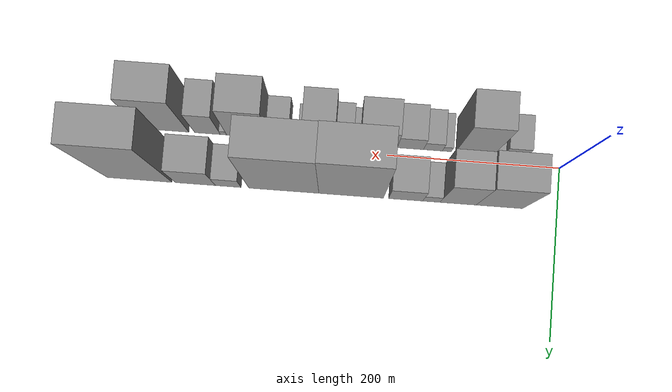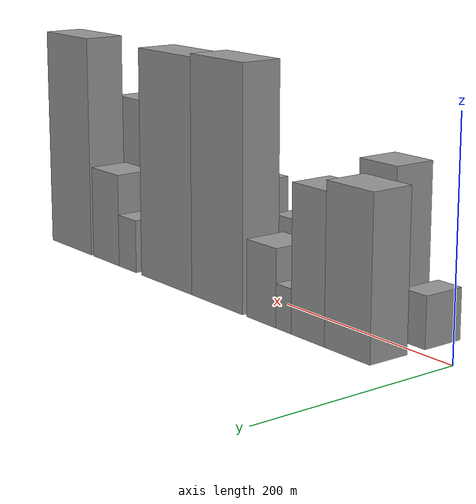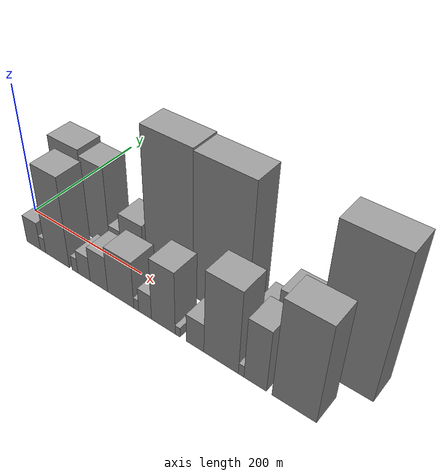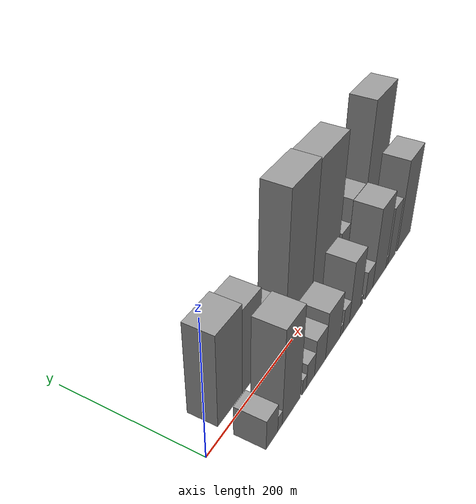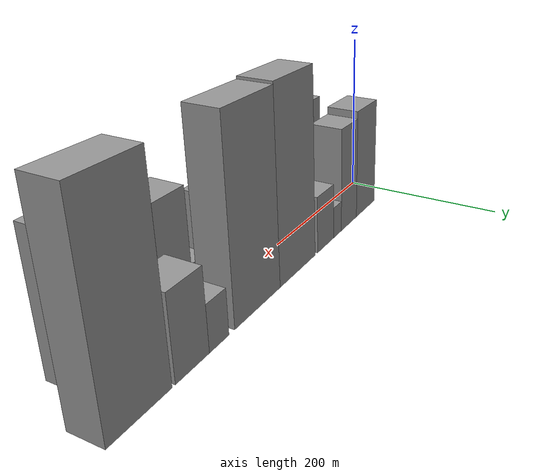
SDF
<sdf version="1.6">
 <world name="default">
  <scene>
   <sky><clouds><speed>12</speed></clouds></sky>
   <ambient>0.4 0.4 0.4 1</ambient>
   <background>0.7 0.7 0.7 1</background>
   <shadows>1</shadows>
  </scene>
  <gravity>0 0 -9.8066</gravity>
  <magnetic_field>6e-06 2.3e-05 -4.2e-05</magnetic_field>
  <physics default="0" name="default_physics" type="ode">
   <ode>
    <solver>
     <type>quick</type>
     <iters>10</iters>
     <sor>1.0</sor>
     <use_dynamic_moi_rescaling>0</use_dynamic_moi_rescaling>
    </solver>
    <constraints>
     <cfm>0</cfm>
     <erp>0.2</erp>
     <contact_max_correcting_vel>100</contact_max_correcting_vel>
     <contact_surface_layer>0.001</contact_surface_layer>
    </constraints>
   </ode>
   <max_step_size>0.004</max_step_size>
   <real_time_factor>1</real_time_factor>
   <real_time_update_rate>250</real_time_update_rate>
  </physics>
  <light name="sun" type="directional">
   <pose>0 0 10 0 0 0</pose>
   <diffuse>0.8 0.8 0.8 1</diffuse>
   <specular>0.2 0.2 0.2 1</specular>
   <attenuation>
    <range>1000</range>
    <constant>0.9</constant>
    <linear>0.01</linear>
    <quadratic>0.001</quadratic>
   </attenuation>
   <direction>-0.5 0.1 -0.9</direction>
  </light>
  <model name="building_1">
   <static>1</static>
   <pose>66.9440 30.0000 0 0.000000 0.000000 1.570796</pose>
   <link name="link">
    <pose>0 0 69.00 0 0 0</pose>
    <collision name="collision"><geometry><box><size>40.0000 53.8881 138.0000</size></box></geometry></collision>
    <visual name="visual">
     <cast_shadows>0</cast_shadows>
     <geometry><box><size>40.0000 53.8881 138.0000</size></box></geometry>
     <material>
      <script>
       <uri>model://grey_wall/materials/scripts</uri>
       <uri>model://grey_wall/materials/textures</uri>
       <name>vrc/grey_wall</name>
      </script>
     </material>
    </visual>
   </link>
  </model>
  <model name="building_2">
   <static>1</static>
   <pose>114.7403 30.0000 0 0.000000 0.000000 1.570796</pose>
   <link name="link">
    <pose>0 0 64.50 0 0 0</pose>
    <collision name="collision"><geometry><box><size>40.0000 41.7045 129.0000</size></box></geometry></collision>
    <visual name="visual">
     <cast_shadows>0</cast_shadows>
     <geometry><box><size>40.0000 41.7045 129.0000</size></box></geometry>
     <material>
      <script>
       <uri>model://grey_wall/materials/scripts</uri>
       <uri>model://grey_wall/materials/textures</uri>
       <name>vrc/grey_wall</name>
      </script>
     </material>
    </visual>
   </link>
  </model>
  <model name="building_3">
   <static>1</static>
   <pose>145.5895 30.0000 0 0.000000 0.000000 1.570796</pose>
   <link name="link">
    <pose>0 0 19.50 0 0 0</pose>
    <collision name="collision"><geometry><box><size>40.0000 19.9938 39.0000</size></box></geometry></collision>
    <visual name="visual">
     <cast_shadows>0</cast_shadows>
     <geometry><box><size>40.0000 19.9938 39.0000</size></box></geometry>
     <material>
      <script>
       <uri>model://grey_wall/materials/scripts</uri>
       <uri>model://grey_wall/materials/textures</uri>
       <name>vrc/grey_wall</name>
      </script>
     </material>
    </visual>
   </link>
  </model>
  <model name="building_4">
   <static>1</static>
   <pose>175.2585 30.0000 0 0.000000 0.000000 1.570796</pose>
   <link name="link">
    <pose>0 0 34.50 0 0 0</pose>
    <collision name="collision"><geometry><box><size>40.0000 39.3444 69.0000</size></box></geometry></collision>
    <visual name="visual">
     <cast_shadows>0</cast_shadows>
     <geometry><box><size>40.0000 39.3444 69.0000</size></box></geometry>
     <material>
      <script>
       <uri>model://grey_wall/materials/scripts</uri>
       <uri>model://grey_wall/materials/textures</uri>
       <name>vrc/grey_wall</name>
      </script>
     </material>
    </visual>
   </link>
  </model>
  <model name="building_5">
   <static>1</static>
   <pose>238.2766 30.0000 0 0.000000 0.000000 1.570796</pose>
   <link name="link">
    <pose>0 0 109.50 0 0 0</pose>
    <collision name="collision"><geometry><box><size>40.0000 74.6918 219.0000</size></box></geometry></collision>
    <visual name="visual">
     <cast_shadows>0</cast_shadows>
     <geometry><box><size>40.0000 74.6918 219.0000</size></box></geometry>
     <material>
      <script>
       <uri>model://grey_wall/materials/scripts</uri>
       <uri>model://grey_wall/materials/textures</uri>
       <name>vrc/grey_wall</name>
      </script>
     </material>
    </visual>
   </link>
  </model>
  <model name="building_6">
   <static>1</static>
   <pose>316.1250 30.0000 0 0.000000 0.000000 1.570796</pose>
   <link name="link">
    <pose>0 0 108.00 0 0 0</pose>
    <collision name="collision"><geometry><box><size>40.0000 81.0050 216.0000</size></box></geometry></collision>
    <visual name="visual">
     <cast_shadows>0</cast_shadows>
     <geometry><box><size>40.0000 81.0050 216.0000</size></box></geometry>
     <material>
      <script>
       <uri>model://grey_wall/materials/scripts</uri>
       <uri>model://grey_wall/materials/textures</uri>
       <name>vrc/grey_wall</name>
      </script>
     </material>
    </visual>
   </link>
  </model>
  <model name="building_7">
   <static>1</static>
   <pose>380.4439 30.0000 0 0.000000 0.000000 1.570796</pose>
   <link name="link">
    <pose>0 0 25.50 0 0 0</pose>
    <collision name="collision"><geometry><box><size>40.0000 29.6328 51.0000</size></box></geometry></collision>
    <visual name="visual">
     <cast_shadows>0</cast_shadows>
     <geometry><box><size>40.0000 29.6328 51.0000</size></box></geometry>
     <material>
      <script>
       <uri>model://grey_wall/materials/scripts</uri>
       <uri>model://grey_wall/materials/textures</uri>
       <name>vrc/grey_wall</name>
      </script>
     </material>
    </visual>
   </link>
  </model>
  <model name="building_8">
   <static>1</static>
   <pose>418.5278 30.0000 0 0.000000 0.000000 1.570796</pose>
   <link name="link">
    <pose>0 0 45.00 0 0 0</pose>
    <collision name="collision"><geometry><box><size>40.0000 46.5349 90.0000</size></box></geometry></collision>
    <visual name="visual">
     <cast_shadows>0</cast_shadows>
     <geometry><box><size>40.0000 46.5349 90.0000</size></box></geometry>
     <material>
      <script>
       <uri>model://grey_wall/materials/scripts</uri>
       <uri>model://grey_wall/materials/textures</uri>
       <name>vrc/grey_wall</name>
      </script>
     </material>
    </visual>
   </link>
  </model>
  <model name="building_9">
   <static>1</static>
   <pose>483.3286 30.0000 0 0.000000 0.000000 1.570796</pose>
   <link name="link">
    <pose>0 0 108.00 0 0 0</pose>
    <collision name="collision"><geometry><box><size>40.0000 75.0668 216.0000</size></box></geometry></collision>
    <visual name="visual">
     <cast_shadows>0</cast_shadows>
     <geometry><box><size>40.0000 75.0668 216.0000</size></box></geometry>
     <material>
      <script>
       <uri>model://grey_wall/materials/scripts</uri>
       <uri>model://grey_wall/materials/textures</uri>
       <name>vrc/grey_wall</name>
      </script>
     </material>
    </visual>
   </link>
  </model>
  <model name="building_10">
   <static>1</static>
   <pose>53.2304 -30.0000 0 0.000000 0.000000 1.570796</pose>
   <link name="link">
    <pose>0 0 22.50 0 0 0</pose>
    <collision name="collision"><geometry><box><size>40.0000 26.4608 45.0000</size></box></geometry></collision>
    <visual name="visual">
     <cast_shadows>0</cast_shadows>
     <geometry><box><size>40.0000 26.4608 45.0000</size></box></geometry>
     <material>
      <script>
       <uri>model://grey_wall/materials/scripts</uri>
       <uri>model://grey_wall/materials/textures</uri>
       <name>vrc/grey_wall</name>
      </script>
     </material>
    </visual>
   </link>
  </model>
  <model name="building_11">
   <static>1</static>
   <pose>71.6783 -30.0000 0 0.000000 0.000000 1.570796</pose>
   <link name="link">
    <pose>0 0 12.00 0 0 0</pose>
    <collision name="collision"><geometry><box><size>40.0000 10.4350 24.0000</size></box></geometry></collision>
    <visual name="visual">
     <cast_shadows>0</cast_shadows>
     <geometry><box><size>40.0000 10.4350 24.0000</size></box></geometry>
     <material>
      <script>
       <uri>model://grey_wall/materials/scripts</uri>
       <uri>model://grey_wall/materials/textures</uri>
       <name>vrc/grey_wall</name>
      </script>
     </material>
    </visual>
   </link>
  </model>
  <model name="building_12">
   <static>1</static>
   <pose>99.0378 -30.0000 0 0.000000 0.000000 1.570796</pose>
   <link name="link">
    <pose>0 0 72.00 0 0 0</pose>
    <collision name="collision"><geometry><box><size>40.0000 44.2841 144.0000</size></box></geometry></collision>
    <visual name="visual">
     <cast_shadows>0</cast_shadows>
     <geometry><box><size>40.0000 44.2841 144.0000</size></box></geometry>
     <material>
      <script>
       <uri>model://grey_wall/materials/scripts</uri>
       <uri>model://grey_wall/materials/textures</uri>
       <name>vrc/grey_wall</name>
      </script>
     </material>
    </visual>
   </link>
  </model>
  <model name="building_13">
   <static>1</static>
   <pose>131.4482 -30.0000 0 0.000000 0.000000 1.570796</pose>
   <link name="link">
    <pose>0 0 12.00 0 0 0</pose>
    <collision name="collision"><geometry><box><size>40.0000 10.5368 24.0000</size></box></geometry></collision>
    <visual name="visual">
     <cast_shadows>0</cast_shadows>
     <geometry><box><size>40.0000 10.5368 24.0000</size></box></geometry>
     <material>
      <script>
       <uri>model://grey_wall/materials/scripts</uri>
       <uri>model://grey_wall/materials/textures</uri>
       <name>vrc/grey_wall</name>
      </script>
     </material>
    </visual>
   </link>
  </model>
  <model name="building_14">
   <static>1</static>
   <pose>147.6726 -30.0000 0 0.000000 0.000000 1.570796</pose>
   <link name="link">
    <pose>0 0 19.50 0 0 0</pose>
    <collision name="collision"><geometry><box><size>40.0000 21.9119 39.0000</size></box></geometry></collision>
    <visual name="visual">
     <cast_shadows>0</cast_shadows>
     <geometry><box><size>40.0000 21.9119 39.0000</size></box></geometry>
     <material>
      <script>
       <uri>model://grey_wall/materials/scripts</uri>
       <uri>model://grey_wall/materials/textures</uri>
       <name>vrc/grey_wall</name>
      </script>
     </material>
    </visual>
   </link>
  </model>
  <model name="building_15">
   <static>1</static>
   <pose>173.8205 -30.0000 0 0.000000 0.000000 1.570796</pose>
   <link name="link">
    <pose>0 0 28.50 0 0 0</pose>
    <collision name="collision"><geometry><box><size>40.0000 30.3840 57.0000</size></box></geometry></collision>
    <visual name="visual">
     <cast_shadows>0</cast_shadows>
     <geometry><box><size>40.0000 30.3840 57.0000</size></box></geometry>
     <material>
      <script>
       <uri>model://grey_wall/materials/scripts</uri>
       <uri>model://grey_wall/materials/textures</uri>
       <name>vrc/grey_wall</name>
      </script>
     </material>
    </visual>
   </link>
  </model>
  <model name="building_16">
   <static>1</static>
   <pose>210.7797 -30.0000 0 0.000000 0.000000 1.570796</pose>
   <link name="link">
    <pose>0 0 37.50 0 0 0</pose>
    <collision name="collision"><geometry><box><size>40.0000 43.5342 75.0000</size></box></geometry></collision>
    <visual name="visual">
     <cast_shadows>0</cast_shadows>
     <geometry><box><size>40.0000 43.5342 75.0000</size></box></geometry>
     <material>
      <script>
       <uri>model://grey_wall/materials/scripts</uri>
       <uri>model://grey_wall/materials/textures</uri>
       <name>vrc/grey_wall</name>
      </script>
     </material>
    </visual>
   </link>
  </model>
  <model name="building_17">
   <static>1</static>
   <pose>236.4005 -30.0000 0 0.000000 0.000000 1.570796</pose>
   <link name="link">
    <pose>0 0 9.00 0 0 0</pose>
    <collision name="collision"><geometry><box><size>40.0000 7.7074 18.0000</size></box></geometry></collision>
    <visual name="visual">
     <cast_shadows>0</cast_shadows>
     <geometry><box><size>40.0000 7.7074 18.0000</size></box></geometry>
     <material>
      <script>
       <uri>model://grey_wall/materials/scripts</uri>
       <uri>model://grey_wall/materials/textures</uri>
       <name>vrc/grey_wall</name>
      </script>
     </material>
    </visual>
   </link>
  </model>
  <model name="building_18">
   <static>1</static>
   <pose>250.4623 -30.0000 0 0.000000 0.000000 1.570796</pose>
   <link name="link">
    <pose>0 0 19.50 0 0 0</pose>
    <collision name="collision"><geometry><box><size>40.0000 20.4161 39.0000</size></box></geometry></collision>
    <visual name="visual">
     <cast_shadows>0</cast_shadows>
     <geometry><box><size>40.0000 20.4161 39.0000</size></box></geometry>
     <material>
      <script>
       <uri>model://grey_wall/materials/scripts</uri>
       <uri>model://grey_wall/materials/textures</uri>
       <name>vrc/grey_wall</name>
      </script>
     </material>
    </visual>
   </link>
  </model>
  <model name="building_19">
   <static>1</static>
   <pose>278.9108 -30.0000 0 0.000000 0.000000 1.570796</pose>
   <link name="link">
    <pose>0 0 49.50 0 0 0</pose>
    <collision name="collision"><geometry><box><size>40.0000 36.4809 99.0000</size></box></geometry></collision>
    <visual name="visual">
     <cast_shadows>0</cast_shadows>
     <geometry><box><size>40.0000 36.4809 99.0000</size></box></geometry>
     <material>
      <script>
       <uri>model://grey_wall/materials/scripts</uri>
       <uri>model://grey_wall/materials/textures</uri>
       <name>vrc/grey_wall</name>
      </script>
     </material>
    </visual>
   </link>
  </model>
  <model name="building_20">
   <static>1</static>
   <pose>300.8193 -30.0000 0 0.000000 0.000000 1.570796</pose>
   <link name="link">
    <pose>0 0 7.50 0 0 0</pose>
    <collision name="collision"><geometry><box><size>40.0000 7.3362 15.0000</size></box></geometry></collision>
    <visual name="visual">
     <cast_shadows>0</cast_shadows>
     <geometry><box><size>40.0000 7.3362 15.0000</size></box></geometry>
     <material>
      <script>
       <uri>model://grey_wall/materials/scripts</uri>
       <uri>model://grey_wall/materials/textures</uri>
       <name>vrc/grey_wall</name>
      </script>
     </material>
    </visual>
   </link>
  </model>
  <model name="building_21">
   <static>1</static>
   <pose>326.4053 -30.0000 0 0.000000 0.000000 1.570796</pose>
   <link name="link">
    <pose>0 0 22.50 0 0 0</pose>
    <collision name="collision"><geometry><box><size>40.0000 25.8357 45.0000</size></box></geometry></collision>
    <visual name="visual">
     <cast_shadows>0</cast_shadows>
     <geometry><box><size>40.0000 25.8357 45.0000</size></box></geometry>
     <material>
      <script>
       <uri>model://grey_wall/materials/scripts</uri>
       <uri>model://grey_wall/materials/textures</uri>
       <name>vrc/grey_wall</name>
      </script>
     </material>
    </visual>
   </link>
  </model>
  <model name="building_22">
   <static>1</static>
   <pose>363.4138 -30.0000 0 0.000000 0.000000 1.570796</pose>
   <link name="link">
    <pose>0 0 64.50 0 0 0</pose>
    <collision name="collision"><geometry><box><size>40.0000 48.1813 129.0000</size></box></geometry></collision>
    <visual name="visual">
     <cast_shadows>0</cast_shadows>
     <geometry><box><size>40.0000 48.1813 129.0000</size></box></geometry>
     <material>
      <script>
       <uri>model://grey_wall/materials/scripts</uri>
       <uri>model://grey_wall/materials/textures</uri>
       <name>vrc/grey_wall</name>
      </script>
     </material>
    </visual>
   </link>
  </model>
  <model name="building_23">
   <static>1</static>
   <pose>391.2471 -30.0000 0 0.000000 0.000000 1.570796</pose>
   <link name="link">
    <pose>0 0 9.00 0 0 0</pose>
    <collision name="collision"><geometry><box><size>40.0000 7.4853 18.0000</size></box></geometry></collision>
    <visual name="visual">
     <cast_shadows>0</cast_shadows>
     <geometry><box><size>40.0000 7.4853 18.0000</size></box></geometry>
     <material>
      <script>
       <uri>model://grey_wall/materials/scripts</uri>
       <uri>model://grey_wall/materials/textures</uri>
       <name>vrc/grey_wall</name>
      </script>
     </material>
    </visual>
   </link>
  </model>
  <model name="building_24">
   <static>1</static>
   <pose>409.8672 -30.0000 0 0.000000 0.000000 1.570796</pose>
   <link name="link">
    <pose>0 0 48.00 0 0 0</pose>
    <collision name="collision"><geometry><box><size>40.0000 29.7549 96.0000</size></box></geometry></collision>
    <visual name="visual">
     <cast_shadows>0</cast_shadows>
     <geometry><box><size>40.0000 29.7549 96.0000</size></box></geometry>
     <material>
      <script>
       <uri>model://grey_wall/materials/scripts</uri>
       <uri>model://grey_wall/materials/textures</uri>
       <name>vrc/grey_wall</name>
      </script>
     </material>
    </visual>
   </link>
  </model>
  <model name="building_25">
   <static>1</static>
   <pose>459.4814 -30.0000 0 0.000000 0.000000 1.570796</pose>
   <link name="link">
    <pose>0 0 75.00 0 0 0</pose>
    <collision name="collision"><geometry><box><size>40.0000 55.4733 150.0000</size></box></geometry></collision>
    <visual name="visual">
     <cast_shadows>0</cast_shadows>
     <geometry><box><size>40.0000 55.4733 150.0000</size></box></geometry>
     <material>
      <script>
       <uri>model://grey_wall/materials/scripts</uri>
       <uri>model://grey_wall/materials/textures</uri>
       <name>vrc/grey_wall</name>
      </script>
     </material>
    </visual>
   </link>
  </model>
 </world>
</sdf>
